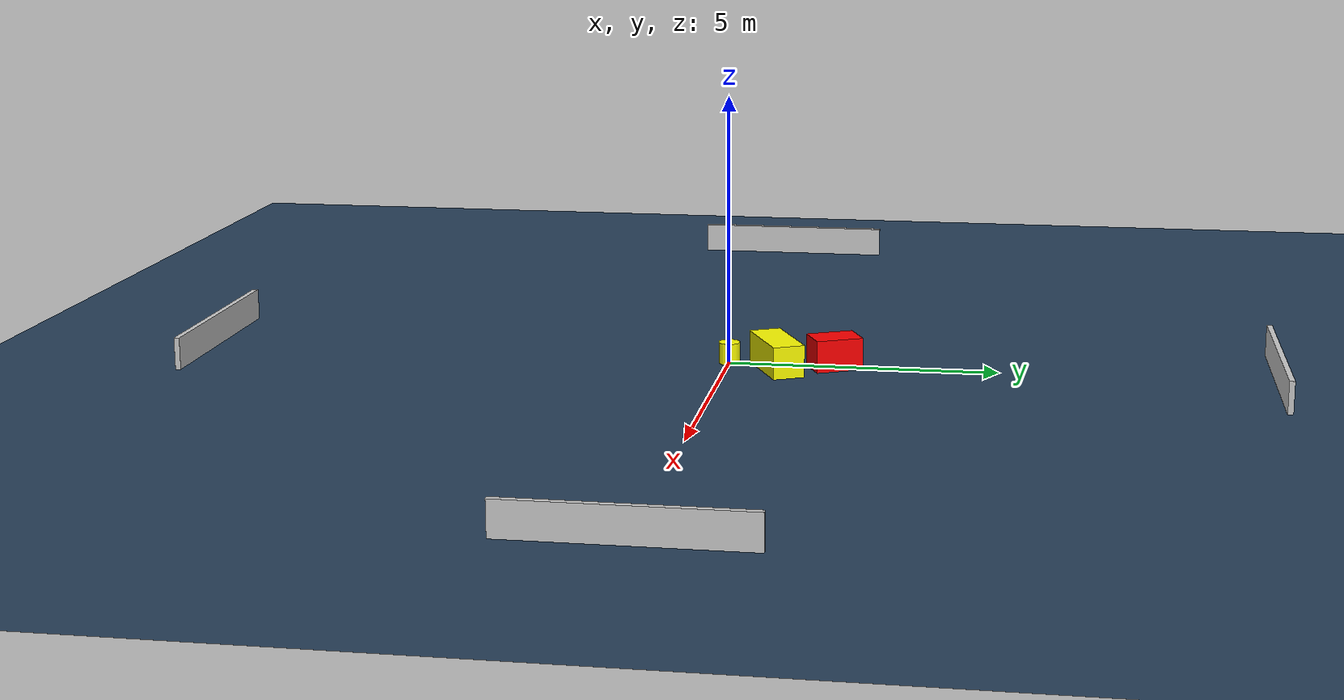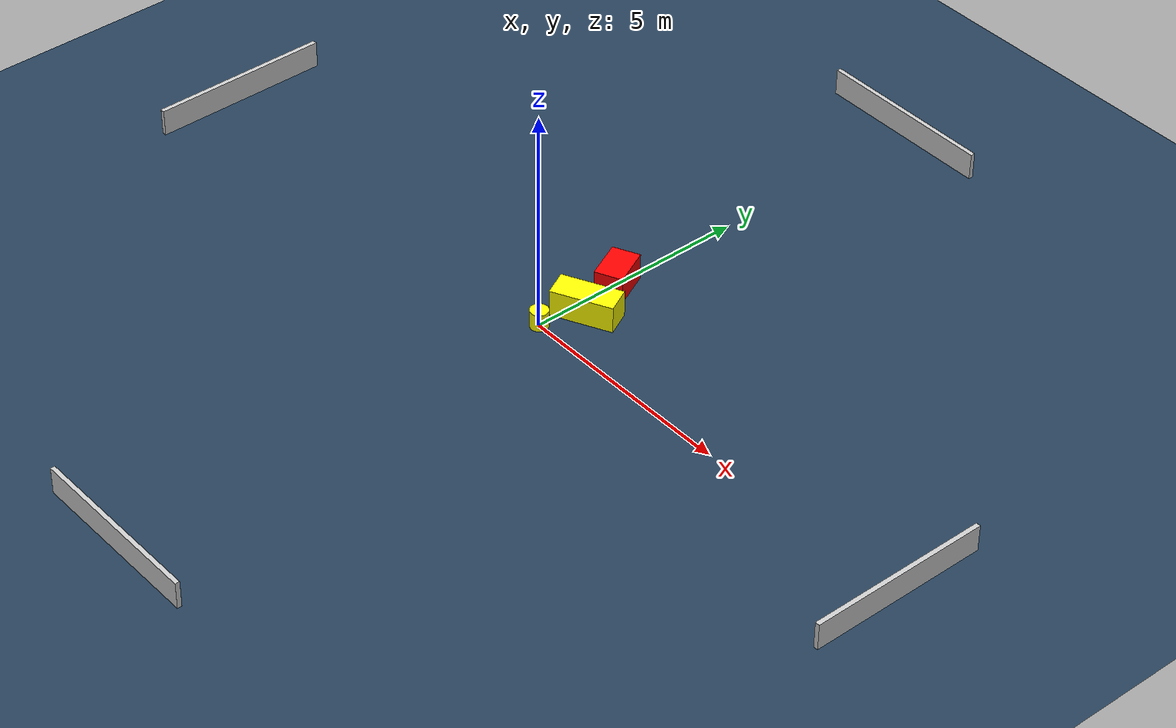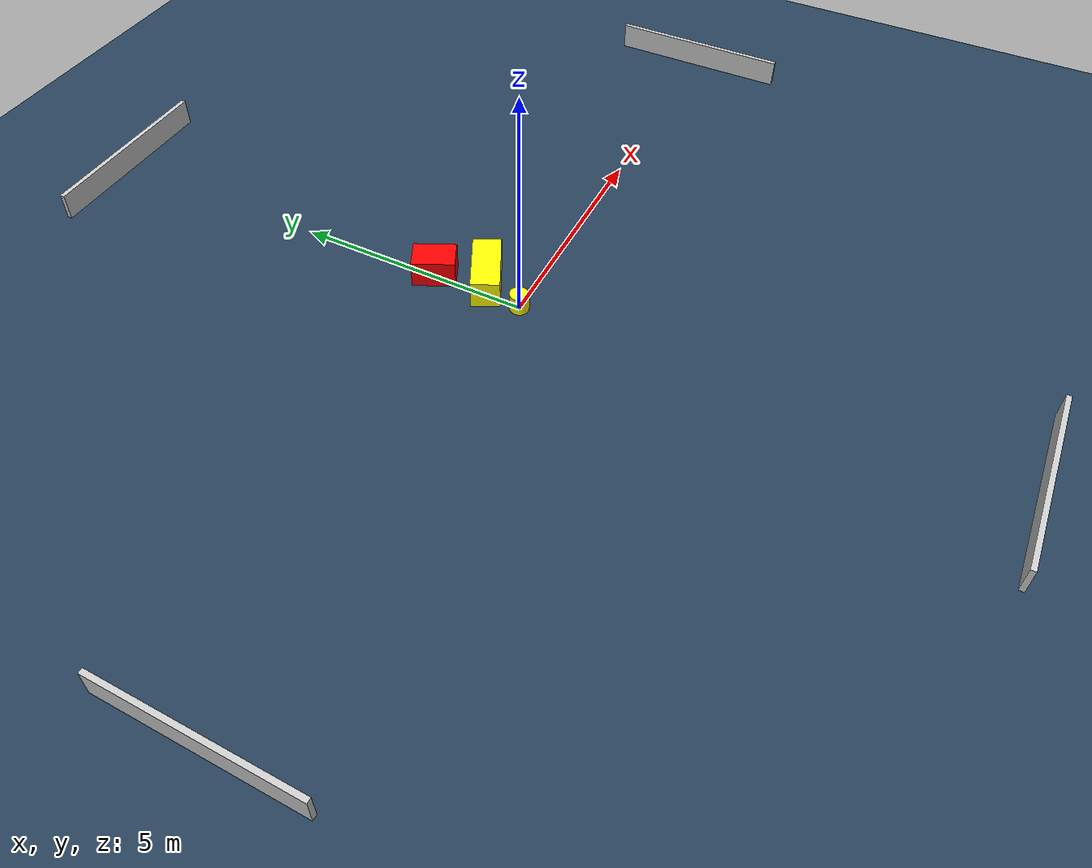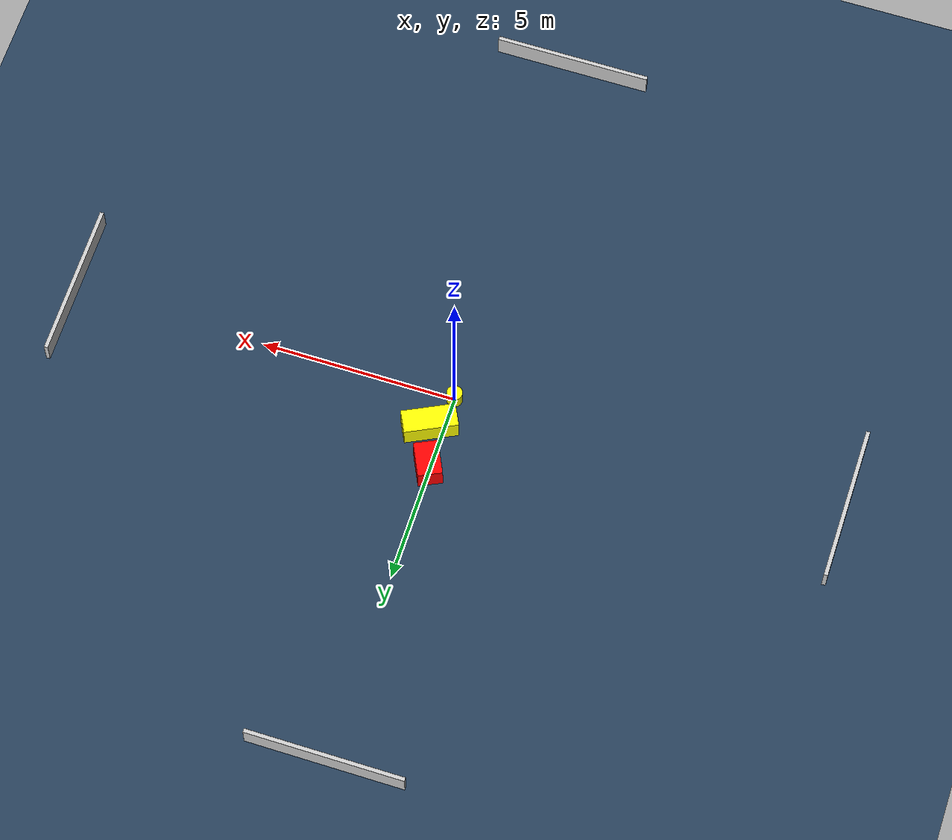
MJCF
<?xml version="1.0" ?>
<mujoco model="generated_environment">
  <option timestep="0.01" integrator="RK4" cone="elliptic"/>
  <default>
    <geom density="1"/>
  </default>
  <asset>
    <texture builtin="gradient" height="3072" name="skybox" rgb1="0.3 0.5 0.7" rgb2="0 0 0" type="skybox" width="512"/>
    <texture builtin="checker" height="300" name="groundplane" rgb1="0.2 0.3 0.4" rgb2="0.1 0.2 0.3" type="2d" width="300"/>
    <material name="groundplane" reflectance="0.2" texrepeat="5 5" texture="groundplane"/>
  </asset>
  <worldbody>
    <light dir="0 0 -1" directional="true" pos="0 0 1.5"/>
    <geom condim="3" friction="0.5 0.005 0.001" material="groundplane" name="floor" pos="0 0 0" size="0 0 0.05" type="plane"/>
    <body name="walls">
      <geom name="wall_1" condim="4" pos="-10.0 0.0 0.3" rgba="0.800000011920929 0.800000011920929 0.800000011920929 1.0" size="0.05 2.0 0.3" type="box"/>
      <geom name="wall_2" condim="4" pos="10.0 0.0 0.3" rgba="0.800000011920929 0.800000011920929 0.800000011920929 1.0" size="0.05 2.0 0.3" type="box"/>
      <geom name="wall_3" condim="4" pos="0.0 -10.0 0.3" rgba="0.800000011920929 0.800000011920929 0.800000011920929 1.0" size="2.0 0.05 0.3" type="box"/>
      <geom name="wall_4" condim="4" pos="0.0 10.0 0.3" rgba="0.800000011920929 0.800000011920929 0.800000011920929 1.0" size="2.0 0.05 0.3" type="box"/>
    </body>
    <body name="robot">
      <joint name="joint_x" type="slide" pos="0 0 0" axis="1 0 0"/>
      <joint name="joint_y" type="slide" pos="0 0 0" axis="0 1 0"/>
      <geom name="robot" type="cylinder" pos="0.0 0.0 0.2" size="0.2 0.2 0.0" mass="5.0" friction="1.0 0.005 0.0001" condim="4" rgba="1.0 1.0 0.0 1.0"/>
    </body>
    <body name="obstacle_1_movable">
      <geom name="obstacle_1_movable" condim="4" pos="0.3446667728746085 0.9302757004222972 0.3" euler="0 0 296.3806437019057" friction="0.0 0.005 0.001" rgba="1.0 1.0 0.0 1.0" size="0.2980278751722286 0.6832026527349828 0.3" type="box" mass="0.1"/>
      <joint type="free"/>
    </body>
    <body name="obstacle_2_static">
      <geom name="obstacle_2_static" condim="4" pos="0.05283462296669856 1.9736910289739105 0.3" euler="0 0 205.34097250827978" friction="0.0 0.005 0.001" rgba="1.0 0.0 0.0 1.0" size="0.30785458355525597 0.4467467080349312 0.3" type="box"/>
    </body>
  </worldbody>
  <actuator>
    <motor name="actuator_x" joint="joint_x" gear="1" ctrlrange="-1 1"/>
    <motor name="actuator_y" joint="joint_y" gear="1" ctrlrange="-1 1"/>
  </actuator>
</mujoco>
